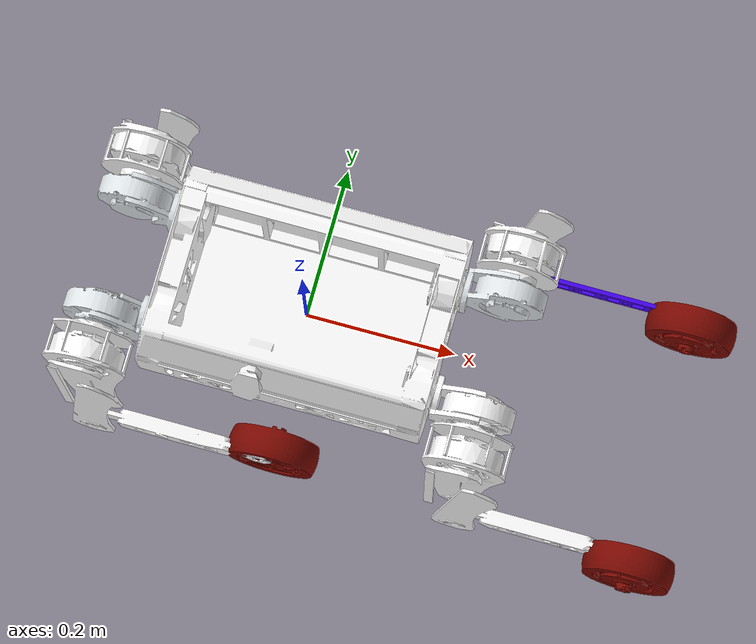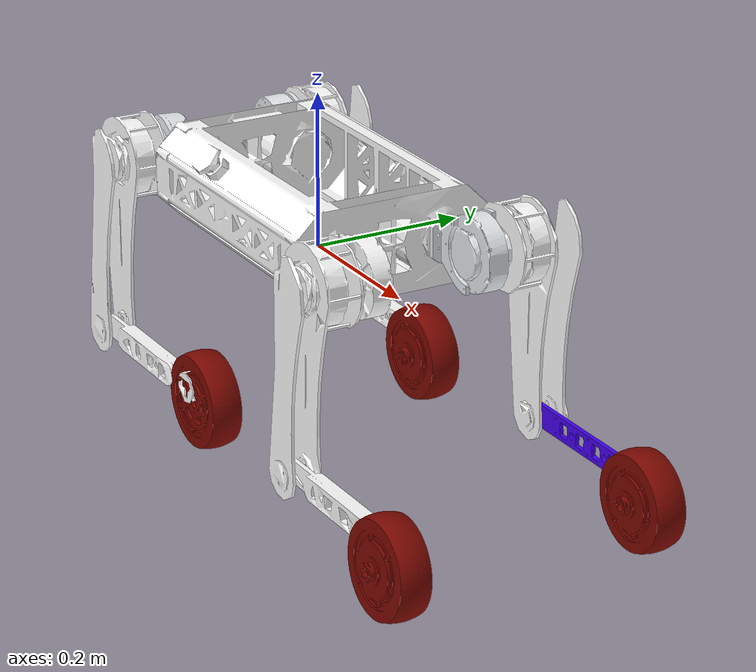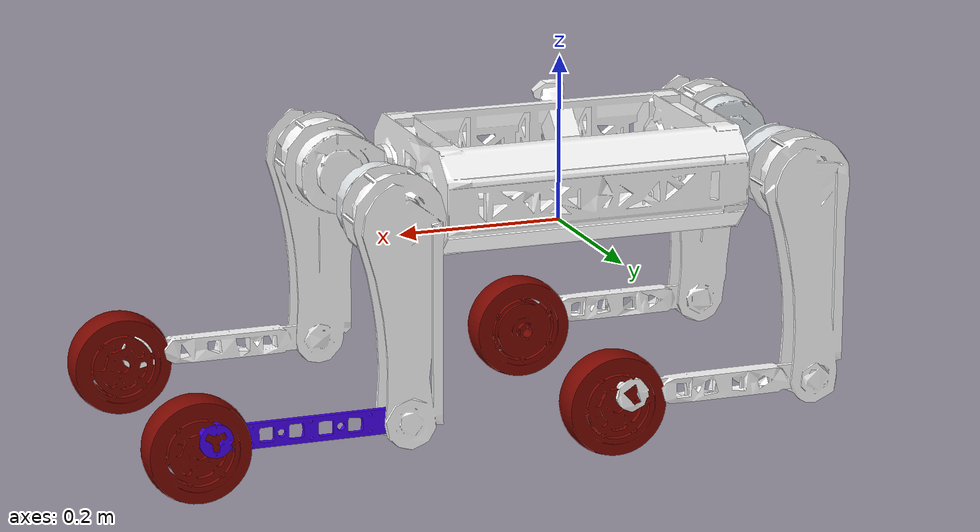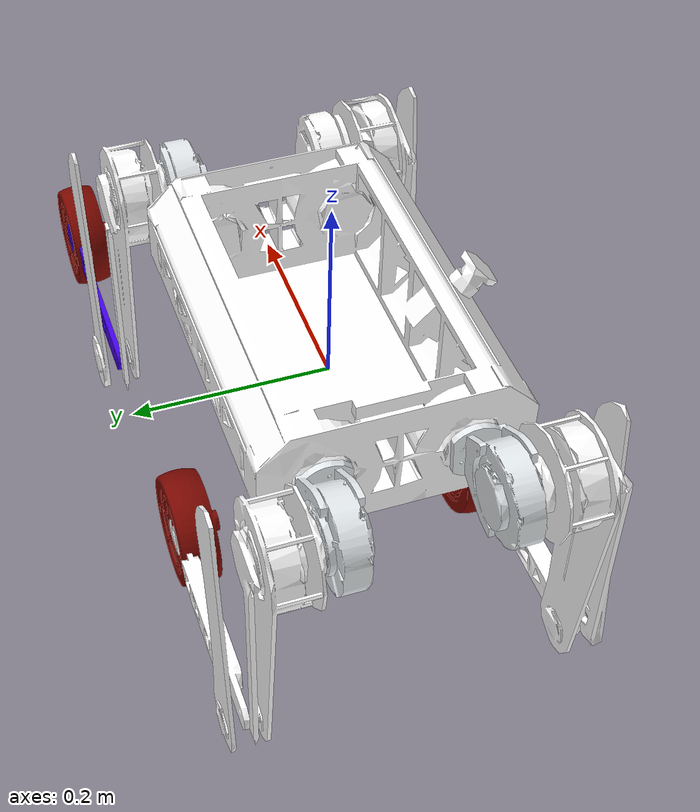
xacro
<?xml version="1.0"?>

<robot name="at_dog" xmlns:xacro="http://www.ros.org/wiki/xacro">

  <xacro:arg name="SIMULATE" default="true"/>

  <xacro:include filename="$(find at_dog_description)/model/dog.urdf"/>

  <xacro:if value="$(arg SIMULATE)">
    <xacro:include filename="$(find at_dog_description)/xacro/ros2_control_sim.xacro"/>
  </xacro:if>

  <xacro:unless value="$(arg SIMULATE)">
    <xacro:include filename="$(find at_dog_description)/xacro/ros2_control_real.xacro"/>
  </xacro:unless>

  <joint name="imu_main_joint" type="fixed">
    <parent link="base"/>
    <child link="imu_main_link"/>
    <origin rpy="0 0 0" xyz="0 0 0.056203"/>
  </joint>

  <link name="imu_main_link">
    <inertial>
      <mass value="0.001"/>
      <origin rpy="0 0 0" xyz="0 0 0"/>
      <inertia ixx="0.0001" ixy="0" ixz="0" iyy="0.0001" iyz="0" izz="0.0001"/>
    </inertial>
    <visual>
      <origin rpy="0 0 0" xyz="0 0 0"/>
      <geometry>
        <box size="0.001 0.001 0.001"/>
      </geometry>
       <material name="red"/>
    </visual>
    <collision>
      <origin rpy="0 0 0" xyz="0 0 0"/>
      <geometry>
        <box size=".001 .001 .001"/>
      </geometry>
    </collision>
  </link>

</robot>

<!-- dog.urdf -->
<robot
  name="at_dog_description">
  <link
    name="base">
    <inertial>
      <origin
        xyz="6.3455E-05 0.0025357 0.056203"
        rpy="0 0 0" />
      <mass
        value="4.2135" />
      <inertia
        ixx="0.0060638"
        ixy="-5.3318E-07"
        ixz="5.6918E-06"
        iyy="0.010952"
        iyz="-3.8767E-07"
        izz="0.011761" />
    </inertial>
    <visual>
      <origin
        xyz="0 0 0"
        rpy="0 0 0" />
      <geometry>
        <mesh
          filename="package://at_dog_description/model/body_link.stl" />
      </geometry>
      <material
        name="">
        <color
          rgba="1 1 1 1" />
      </material>
    </visual>
    <collision>
      <origin
        xyz="0 0 0"
        rpy="0 0 0" />
      <geometry>
        <mesh
          filename="package://at_dog_description/model/body_link.stl" />
      </geometry>
    </collision>
  </link>
  <link
    name="lf_link1">
    <inertial>
      <origin
        xyz="0.000574214410691096 0.00884611079249059 0.0444224997613148"
        rpy="0 0 0" />
      <mass
        value="0.305258503824178" />
      <inertia
        ixx="0.000136409457070104"
        ixy="-5.19133329723354E-06"
        ixz="-6.31057525505763E-06"
        iyy="0.000294368731928015"
        iyz="-1.82247860876147E-07"
        izz="0.000186109193953674" />
    </inertial>
    <visual>
      <origin
        xyz="0 0 0"
        rpy="0 0 0" />
      <geometry>
        <mesh
          filename="package://at_dog_description/model/lf_link1.stl" />
      </geometry>
      <material
        name="">
        <color
          rgba="0.898039215686275 0.917647058823529 0.929411764705882 1" />
      </material>
    </visual>
    <collision>
      <origin
        xyz="0 0 0"
        rpy="0 0 0" />
      <geometry>
        <mesh
          filename="package://at_dog_description/model/lf_link1.stl" />
      </geometry>
    </collision>
  </link>
  <joint
    name="lf_joint1"
    type="revolute">
    <origin
      xyz="0.1916 0.069987 0.061999"
      rpy="0 1.5708 0" />
    <parent
      link="base" />
    <child
      link="lf_link1" />
    <axis
      xyz="0 0 1" />
    <limit
      lower="-3"
      upper="3"
      effort="20"
      velocity="16" />
  </joint>
  <link
    name="lf_link2">
    <inertial>
      <origin
        xyz="0.0668405851618955 -0.000370930192861829 0.0525635427868991"
        rpy="0 0 0" />
      <mass
        value="0.644661117972557" />
      <inertia
        ixx="0.000307098150625019"
        ixy="-9.81390338081933E-05"
        ixz="7.90371759952034E-08"
        iyy="0.00197756467404996"
        iyz="2.84131524105283E-08"
        izz="0.00225867858450203" />
    </inertial>
    <visual>
      <origin
        xyz="0 0 0"
        rpy="0 0 0" />
      <geometry>
        <mesh
          filename="package://at_dog_description/model/lf_link2.stl" />
      </geometry>
      <material
        name="">
        <color
          rgba="1 1 1 1" />
      </material>
    </visual>
    <collision>
      <origin
        xyz="0 0 0"
        rpy="0 0 0" />
      <geometry>
        <mesh
          filename="package://at_dog_description/model/lf_link2.stl" />
      </geometry>
    </collision>
  </link>
  <joint
    name="lf_joint2"
    type="revolute">
    <origin
      xyz="-0.000957 0.029298 0.060013"
      rpy="-1.5708 0 0" />
    <parent
      link="lf_link1" />
    <child
      link="lf_link2" />
    <axis
      xyz="0 0 1" />
    <limit
      lower="-3"
      upper="3"
      effort="20"
      velocity="16" />
  </joint>
  <link
    name="lf_link3">
    <inertial>
      <origin
        xyz="0.105970507374904 -4.4905745788526E-13 -0.0235"
        rpy="0 0 0" />
      <mass
        value="0.119977441819341" />
      <inertia
        ixx="1.11278403765771E-05"
        ixy="1.86158021235529E-15"
        ixz="3.04742987601871E-19"
        iyy="0.000450737281900616"
        iyz="1.39520627292883E-20"
        izz="0.000461335035038841" />
    </inertial>
    <visual>
      <origin
        xyz="0 0 0"
        rpy="0 0 0" />
      <geometry>
        <mesh
          filename="package://at_dog_description/model/lf_link3.stl" />
      </geometry>
      <material
        name="">
        <color
          rgba="0.266666666666667 0 0.933333333333333 1" />
      </material>
    </visual>
    <collision>
      <origin
        xyz="0 0 0"
        rpy="0 0 0" />
      <geometry>
        <mesh
          filename="package://at_dog_description/model/lf_link3.stl" />
      </geometry>
    </collision>
  </link>
  <joint
    name="lf_joint3"
    type="revolute">
    <origin
      xyz="0.23001 0 0.0935"
      rpy="0 0 -1.5708" />
    <parent
      link="lf_link2" />
    <child
      link="lf_link3" />
    <axis
      xyz="0 0 1" />
    <limit
      lower="-3"
      upper="3"
      effort="20"
      velocity="16" />
  </joint>
  <link
    name="lf_link4">
    <inertial>
      <origin
        xyz="0.0154448407663047 0.00567917549378757 -7.95643565399684E-05"
        rpy="0 0 0" />
      <mass
        value="0.0781571728156937" />
      <inertia
        ixx="2.02902937673578E-05"
        ixy="-4.90264949125268E-06"
        ixz="1.24337921969947E-07"
        iyy="2.89226787552893E-05"
        iyz="4.3803244446045E-08"
        izz="3.36363929644185E-05" />
    </inertial>
    <visual>
      <origin
        xyz="0 0 0"
        rpy="0 0 0" />
      <geometry>
        <mesh
          filename="package://at_dog_description/model/lf_link4.stl" />
      </geometry>
      <material
        name="">
        <color
          rgba="0.482352941176471 0.0274509803921569 0 1" />
      </material>
    </visual>
    <collision>
      <origin
        xyz="0 0 0"
        rpy="0 0 0" />
      <geometry>
        <mesh
          filename="package://at_dog_description/model/lf_link4.stl" />
      </geometry>
    </collision>
  </link>
  <joint
    name="lf_joint4"
    type="fixed">
    <origin
      xyz="0.243132280457965 0.0121889545734945 -0.0235007169194983"
      rpy="0 0 -3.14159265358976" />
    <parent
      link="lf_link3" />
    <child
      link="lf_link4" />
    <axis
      xyz="0 0 0" />
  </joint>
  <link
    name="rf_link1">
    <inertial>
      <origin
        xyz="-0.00109457184247583 -0.00876291363938825 0.0445470026411997"
        rpy="0 0 0" />
      <mass
        value="0.305258502432481" />
      <inertia
        ixx="0.000136439797713075"
        ixy="5.6338792255622E-06"
        ixz="6.31053900638573E-06"
        iyy="0.000294338400343345"
        iyz="-1.8646971344753E-07"
        izz="0.000186109189962905" />
    </inertial>
    <visual>
      <origin
        xyz="0 0 0"
        rpy="0 0 0" />
      <geometry>
        <mesh
          filename="package://at_dog_description/model/rf_link1.stl" />
      </geometry>
      <material
        name="">
        <color
          rgba="1 1 1 1" />
      </material>
    </visual>
    <collision>
      <origin
        xyz="0 0 0"
        rpy="0 0 0" />
      <geometry>
        <mesh
          filename="package://at_dog_description/model/rf_link1.stl" />
      </geometry>
    </collision>
  </link>
  <joint
    name="rf_joint1"
    type="revolute">
    <origin
      xyz="0.1916 -0.070013 0.061999"
      rpy="0 1.5708 0" />
    <parent
      link="base" />
    <child
      link="rf_link1" />
    <axis
      xyz="0 0 1" />
    <limit
      lower="-3"
      upper="3"
      effort="20"
      velocity="16" />
  </joint>
  <link
    name="rf_link2">
    <inertial>
      <origin
        xyz="0.0658455636335398 0.000279500969859597 0.0526642960362097"
        rpy="0 0 0" />
      <mass
        value="0.65339621713157" />
      <inertia
        ixx="0.000309147954108996"
        ixy="9.87787340388029E-05"
        ixz="7.92539358673894E-08"
        iyy="0.00197932450216303"
        iyz="3.2988958434547E-08"
        izz="0.00226247511344723" />
    </inertial>
    <visual>
      <origin
        xyz="0 0 0"
        rpy="0 0 0" />
      <geometry>
        <mesh
          filename="package://at_dog_description/model/rf_link2.stl" />
      </geometry>
      <material
        name="">
        <color
          rgba="1 1 1 1" />
      </material>
    </visual>
    <collision>
      <origin
        xyz="0 0 0"
        rpy="0 0 0" />
      <geometry>
        <mesh
          filename="package://at_dog_description/model/rf_link2.stl" />
      </geometry>
    </collision>
  </link>
  <joint
    name="rf_joint2"
    type="revolute">
    <origin
      xyz="-0.0010387 -0.029268 0.059987"
      rpy="1.5708 0 0" />
    <parent
      link="rf_link1" />
    <child
      link="rf_link2" />
    <axis
      xyz="0 0 1" />
    <limit
      lower="-3"
      upper="3"
      effort="20"
      velocity="16" />
  </joint>
  <link
    name="rf_link3">
    <inertial>
      <origin
        xyz="0.105970507374862 -0.000844712791463531 -0.0234848133971709"
        rpy="0 0 0" />
      <mass
        value="0.11997744181934" />
      <inertia
        ixx="1.11278403765771E-05"
        ixy="3.35079108269132E-15"
        ixz="-1.20534462607847E-16"
        iyy="0.000450750974825162"
        iyz="3.806924452985E-07"
        izz="0.000461321342114293" />
    </inertial>
    <visual>
      <origin
        xyz="0 0 0"
        rpy="0 0 0" />
      <geometry>
        <mesh
          filename="package://at_dog_description/model/rf_link3.stl" />
      </geometry>
      <material
        name="">
        <color
          rgba="1 1 1 1" />
      </material>
    </visual>
    <collision>
      <origin
        xyz="0 0 0"
        rpy="0 0 0" />
      <geometry>
        <mesh
          filename="package://at_dog_description/model/rf_link3.stl" />
      </geometry>
    </collision>
  </link>
  <joint
    name="rf_joint3"
    type="revolute">
    <origin
      xyz="0.22999 1.0169E-05 0.0935"
      rpy="0.0 0.0 1.5708" />
    <parent
      link="rf_link2" />
    <child
      link="rf_link3" />
    <axis
      xyz="0 0 1" />
    <limit
      lower="-3"
      upper="3"
      effort="20"
      velocity="16" />
  </joint>
  <link
    name="rf_link4">
    <inertial>
      <origin
        xyz="-0.015444838632904 -0.00567917512845761 -7.95605609113792E-05"
        rpy="0 0 0" />
      <mass
        value="0.0781571826488302" />
      <inertia
        ixx="2.02902954182646E-05"
        ixy="-4.90264692697193E-06"
        ixz="-1.24336036697789E-07"
        iyy="2.89226745098256E-05"
        iyz="-4.38023682269847E-08"
        izz="3.36363894044616E-05" />
    </inertial>
    <visual>
      <origin
        xyz="0 0 0"
        rpy="0 0 0" />
      <geometry>
        <mesh
          filename="package://at_dog_description/model/rf_link4.stl" />
      </geometry>
      <material
        name="">
        <color
          rgba="0.482352941176471 0.0274509803921569 0 1" />
      </material>
    </visual>
    <collision>
      <origin
        xyz="0 0 0"
        rpy="0 0 0" />
      <geometry>
        <mesh
          filename="package://at_dog_description/model/rf_link4.stl" />
      </geometry>
    </collision>
  </link>
  <joint
    name="rf_joint4"
    type="fixed">
    <origin
      xyz="0.24313 -0.013026 -0.023046"
      rpy="3.1056 0 0" />
    <parent
      link="rf_link3" />
    <child
      link="rf_link4" />
    <axis
      xyz="0 0 0" />
  </joint>
  <link
    name="lb_link1">
    <inertial>
      <origin
        xyz="-0.000761615764585902 -0.00879802417335245 0.0445470016764847"
        rpy="0 0 0" />
      <mass
        value="0.305258519686429" />
      <inertia
        ixx="0.000136239807114161"
        ixy="-3.5439680920138E-07"
        ixz="6.31310558322909E-06"
        iyy="0.000294538341105878"
        iyz="5.25121616391754E-08"
        izz="0.000186109182179804" />
    </inertial>
    <visual>
      <origin
        xyz="0 0 0"
        rpy="0 0 0" />
      <geometry>
        <mesh
          filename="package://at_dog_description/model/lb_link1.stl" />
      </geometry>
      <material
        name="">
        <color
          rgba="0.898039215686275 0.917647058823529 0.929411764705882 1" />
      </material>
    </visual>
    <collision>
      <origin
        xyz="0 0 0"
        rpy="0 0 0" />
      <geometry>
        <mesh
          filename="package://at_dog_description/model/lb_link1.stl" />
      </geometry>
    </collision>
  </link>
  <joint
    name="lb_joint1"
    type="revolute">
    <origin
      xyz="-0.1916 0.070013 0.061999"
      rpy="3.1416 1.5708 0" />
    <parent
      link="base" />
    <child
      link="lb_link1" />
    <axis
      xyz="0 0 1" />
    <limit
      lower="-3"
      upper="3"
      effort="20"
      velocity="16" />
  </joint>
  <link
    name="lb_link2">
    <inertial>
      <origin
        xyz="0.064125479765734 -0.000392291124556313 0.0504984235754739"
        rpy="0 0 0" />
      <mass
        value="0.673603806804068" />
      <inertia
        ixx="0.000313201125675458"
        ixy="-9.82132639032305E-05"
        ixz="2.81460316571121E-08"
        iyy="0.00198416730894395"
        iyz="-3.26253038102869E-08"
        izz="0.00227128289469757" />
    </inertial>
    <visual>
      <origin
        xyz="0 0 0"
        rpy="0 0 0" />
      <geometry>
        <mesh
          filename="package://at_dog_description/model/lb_link2.stl" />
      </geometry>
      <material
        name="">
        <color
          rgba="1 1 1 1" />
      </material>
    </visual>
    <collision>
      <origin
        xyz="0 0 0"
        rpy="0 0 0" />
      <geometry>
        <mesh
          filename="package://at_dog_description/model/lb_link2.stl" />
      </geometry>
    </collision>
  </link>
  <joint
    name="lb_joint2"
    type="revolute">
    <origin
      xyz="7.0296E-05 -0.029287 0.059987"
      rpy="1.5708 0 0" />
    <parent
      link="lb_link1" />
    <child
      link="lb_link2" />
    <axis
      xyz="0 0 1" />
    <limit
      lower="-3"
      upper="3"
      effort="20"
      velocity="16" />
  </joint>
  <link
    name="lb_link3">
    <inertial>
      <origin
        xyz="0.105970507375359 9.48685574542196E-13 -0.0235000000000325"
        rpy="0 0 0" />
      <mass
        value="0.119977441819341" />
      <inertia
        ixx="1.1127840376577E-05"
        ixy="-2.2621509869578E-15"
        ixz="-3.73359054996998E-19"
        iyy="0.000450737281900616"
        iyz="4.24039854346017E-20"
        izz="0.000461335035038841" />
    </inertial>
    <visual>
      <origin
        xyz="0 0 0"
        rpy="0 0 0" />
      <geometry>
        <mesh
          filename="package://at_dog_description/model/lb_link3.stl" />
      </geometry>
      <material
        name="">
        <color
          rgba="1 1 1 1" />
      </material>
    </visual>
    <collision>
      <origin
        xyz="0 0 0"
        rpy="0 0 0" />
      <geometry>
        <mesh
          filename="package://at_dog_description/model/lb_link3.stl" />
      </geometry>
    </collision>
  </link>
  <joint
    name="lb_joint3"
    type="revolute">
    <origin
      xyz="0.23001 0 0.0935"
      rpy="0 0 -1.5708" />
    <parent
      link="lb_link2" />
    <child
      link="lb_link3" />
    <axis
      xyz="0 0 1" />
    <limit
      lower="-3"
      upper="3"
      effort="20"
      velocity="16" />
  </joint>
  <link
    name="lb_link4">
    <inertial>
      <origin
        xyz="-0.015444850801401 -0.00567917659673944 -7.95670697935347E-05"
        rpy="0 0 0" />
      <mass
        value="0.0781572031669603" />
      <inertia
        ixx="2.02903001009682E-05"
        ixy="-4.90265805169401E-06"
        ixz="-1.24331241658099E-07"
        iyy="2.89227008717912E-05"
        iyz="-4.38011856737799E-08"
        izz="3.36364146037888E-05" />
    </inertial>
    <visual>
      <origin
        xyz="0 0 0"
        rpy="0 0 0" />
      <geometry>
        <mesh
          filename="package://at_dog_description/model/lb_link4.stl" />
      </geometry>
      <material
        name="">
        <color
          rgba="0.482352941176471 0.0274509803921569 0 1" />
      </material>
    </visual>
    <collision>
      <origin
        xyz="0 0 0"
        rpy="0 0 0" />
      <geometry>
        <mesh
          filename="package://at_dog_description/model/lb_link4.stl" />
      </geometry>
    </collision>
  </link>
  <joint
    name="lb_joint4"
    type="fixed">
    <origin
      xyz="0.24313 0.012189 -0.023501"
      rpy="0 0 0" />
    <parent
      link="lb_link3" />
    <child
      link="lb_link4" />
    <axis
      xyz="0 0 0" />
  </joint>
  <link
    name="rb_link1">
    <inertial>
      <origin
        xyz="0.000187256165425143 0.00884962036985371 0.044422434717429"
        rpy="0 0 0" />
      <mass
        value="0.305258557068333" />
      <inertia
        ixx="0.000137168196858531"
        ixy="-1.2092678004834E-05"
        ixz="-6.2965939305279E-06"
        iyy="0.000293610016562724"
        iyz="-4.58862723744528E-07"
        izz="0.000186109331923214" />
    </inertial>
    <visual>
      <origin
        xyz="0 0 0"
        rpy="0 0 0" />
      <geometry>
        <mesh
          filename="package://at_dog_description/model/rb_link1.stl" />
      </geometry>
      <material
        name="">
        <color
          rgba="0.898039215686275 0.917647058823529 0.929411764705882 1" />
      </material>
    </visual>
    <collision>
      <origin
        xyz="0 0 0"
        rpy="0 0 0" />
      <geometry>
        <mesh
          filename="package://at_dog_description/model/rb_link1.stl" />
      </geometry>
    </collision>
  </link>
  <joint
    name="rb_joint1"
    type="revolute">
    <origin
      xyz="-0.1916 -0.07 0.062"
      rpy="3.1416 1.5708 0" />
    <parent
      link="base" />
    <child
      link="rb_link1" />
    <axis
      xyz="0 0 1" />
    <limit
      lower="-3"
      upper="3"
      effort="20"
      velocity="16" />
  </joint>
  <link
    name="rb_link2">
    <inertial>
      <origin
        xyz="0.0629593323918275 0.000213693775697132 0.0506213393446128"
        rpy="0 0 0" />
      <mass
        value="0.682338894787625" />
      <inertia
        ixx="0.000315648976850417"
        ixy="9.86408914485747E-05"
        ixz="7.95340854721208E-08"
        iyy="0.0019855291988006"
        iyz="3.31094413201453E-08"
        izz="0.00227507953547341" />
    </inertial>
    <visual>
      <origin
        xyz="0 0 0"
        rpy="0 0 0" />
      <geometry>
        <mesh
          filename="package://at_dog_description/model/rb_link2.stl" />
      </geometry>
      <material
        name="">
        <color
          rgba="1 1 1 1" />
      </material>
    </visual>
    <collision>
      <origin
        xyz="0 0 0"
        rpy="0 0 0" />
      <geometry>
        <mesh
          filename="package://at_dog_description/model/rb_link2.stl" />
      </geometry>
    </collision>
  </link>
  <joint
    name="rb_joint2"
    type="revolute">
    <origin
      xyz="-0.0022402 0.029214 0.06"
      rpy="-1.5708 0 0" />
    <parent
      link="rb_link1" />
    <child
      link="rb_link2" />
    <axis
      xyz="0 0 1" />
    <limit
      lower="-3"
      upper="3"
      effort="20"
      velocity="16" />
  </joint>
  <link
    name="rb_link3">
    <inertial>
      <origin
        xyz="0.105970507374419 8.04911692853238E-14 -0.0235"
        rpy="0 0 0" />
      <mass
        value="0.119977441819341" />
      <inertia
        ixx="1.11278403765772E-05"
        ixy="3.45168043588496E-16"
        ixz="1.87403858665015E-20"
        iyy="0.000450737281900616"
        iyz="1.92526525744362E-21"
        izz="0.000461335035038841" />
    </inertial>
    <visual>
      <origin
        xyz="0 0 0"
        rpy="0 0 0" />
      <geometry>
        <mesh
          filename="package://at_dog_description/model/rb_link3.stl" />
      </geometry>
      <material
        name="">
        <color
          rgba="1 1 1 1" />
      </material>
    </visual>
    <collision>
      <origin
        xyz="0 0 0"
        rpy="0 0 0" />
      <geometry>
        <mesh
          filename="package://at_dog_description/model/rb_link3.stl" />
      </geometry>
    </collision>
  </link>
  <joint
    name="rb_joint3"
    type="revolute">
    <origin
      xyz="0.23 0 0.0935"
      rpy="0 0 1.5708" />
    <parent
      link="rb_link2" />
    <child
      link="rb_link3" />
    <axis
      xyz="0 0 1" />
    <limit
      lower="-3"
      upper="3"
      effort="20"
      velocity="16" />
  </joint>
  <link
    name="rb_link4">
    <inertial>
      <origin
        xyz="-0.0154448559267893 0.0056791770623239 7.95636715325843E-05"
        rpy="0 0 0" />
      <mass
        value="0.0781572323930169" />
      <inertia
        ixx="2.02903028829302E-05"
        ixy="4.90266017080894E-06"
        ixz="1.24325528166021E-07"
        iyy="2.8922712682634E-05"
        iyz="-4.37982257395011E-08"
        izz="3.36364252400607E-05" />
    </inertial>
    <visual>
      <origin
        xyz="0 0 0"
        rpy="0 0 0" />
      <geometry>
        <mesh
          filename="package://at_dog_description/model/rb_link4.stl" />
      </geometry>
      <material
        name="">
        <color
          rgba="0.482352941176471 0.0274509803921569 0 1" />
      </material>
    </visual>
    <collision>
      <origin
        xyz="0 0 0"
        rpy="0 0 0" />
      <geometry>
        <mesh
          filename="package://at_dog_description/model/rb_link4.stl" />
      </geometry>
    </collision>
  </link>
  <joint
    name="rb_joint4"
    type="fixed">
    <origin
      xyz="0.24313 -0.012189 -0.023499"
      rpy="0 0 0" />
    <parent
      link="rb_link3" />
    <child
      link="rb_link4" />
    <axis
      xyz="0 0 0" />
  </joint>
</robot>
